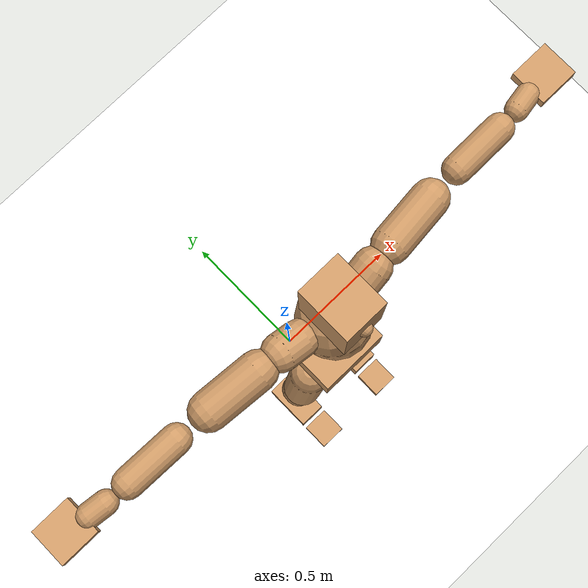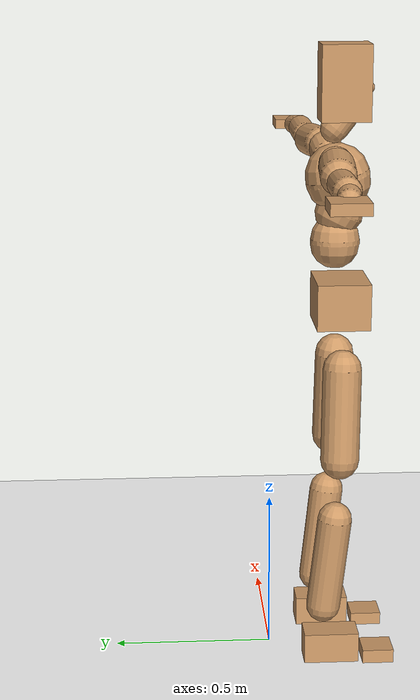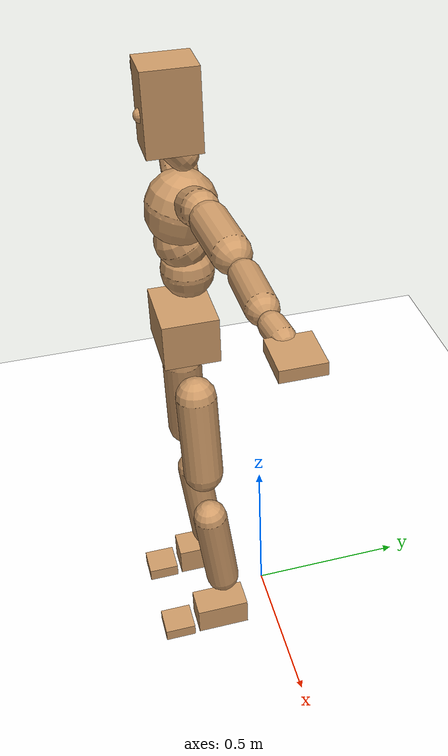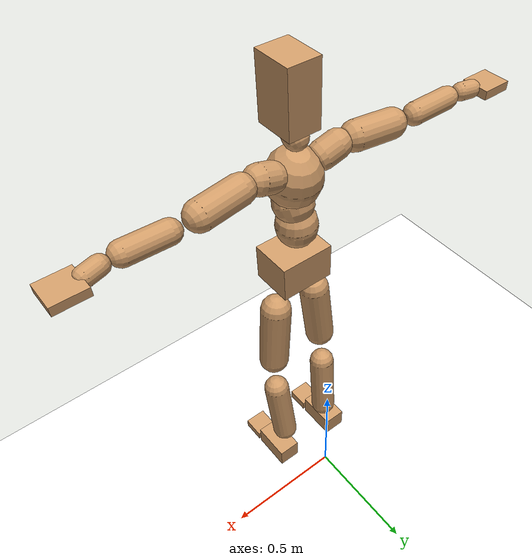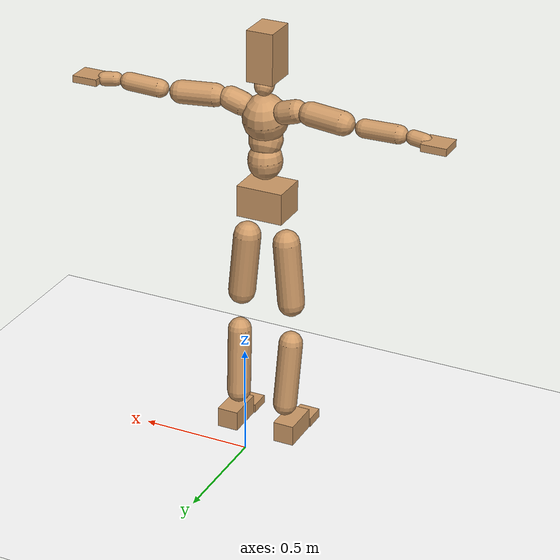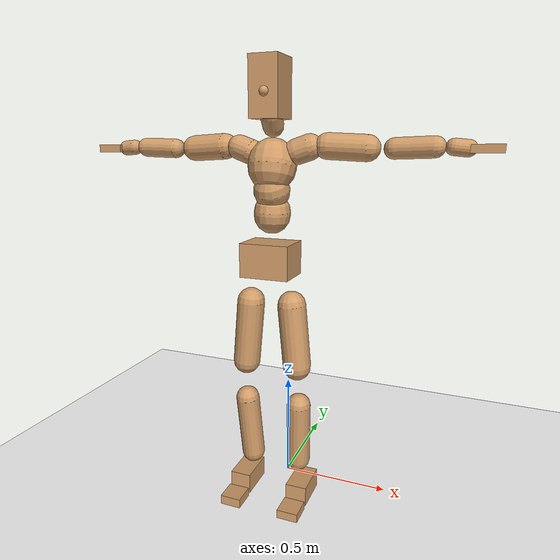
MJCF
<mujoco model="humanoid">
  <option integrator="implicitfast" />

  <visual>
    <global offwidth="1280" offheight="960" />
    <headlight active="1" ambient="0.34 0.34 0.34" diffuse="0.5 0.5 0.5" />
  </visual>

  <default>
    <joint damping="2" stiffness="2" armature="0.01" limited="true" solimplimit="0 .99 .01" />
    <geom condim="1" friction="0.7 0.005 0.0001" solimp=".99 .99 .003" solref="0.015 1" margin="0.001" rgba="0.8 0.6 .4 1" />
    <default class="smplcontact">
      <geom condim="3" friction="1. 0.005 0.0001" solref="0.015 1" solimp="0.98 0.98 0.001" priority="1" />
    </default>
    <default class="stiff_medium">
      <joint stiffness="10" />
    </default>
    <default class="stiff_medium_higher">
      <joint stiffness="50" />
    </default>
    <default class="stiff_high">
      <joint stiffness="100" />
    </default>
  </default>

  <asset>
    <texture type="skybox" builtin="gradient" rgb1="0.99 0.99 0.99" rgb2="0.608 0.828 0.892" width="100" />
    <texture builtin="flat" height="1278" mark="cross" markrgb="1 1 1" name="texgeom" random="0.01" rgb1="0.8 0.6 0.4" rgb2="0.8 0.6 0.4" type="cube" width="127" />
    <texture name="texplane" type="2d" builtin="checker" markrgb="1 1 1" rgb1="0.756 0.772 0.76" rgb2="0.6 0.6 0.6" width="100" height="100" />
    <material name="MatPlane" reflectance="0.5" texture="texplane" texrepeat="1 1" texuniform="true" />
    <material name="geom" texture="texgeom" texuniform="true" />
  </asset>

  <worldbody>
    <light name="tracking_light" pos="0 0 7" dir="0 0 -1" directional="true" cutoff="100" exponent="1" diffuse="1 1 1" specular="0.1 0.1 0.1" mode="trackcom" />
    <camera name="back" pos="0 3 2.4" xyaxes="-1 0 0 0 -1 2" mode="trackcom" />
    <camera name="side" pos="-3 0 2.4" xyaxes="0 -1 0 1 0 2" mode="trackcom" />
    <camera name="front_side" pos="-2.8 -2.8 0.8" xyaxes="0.5 -0.5 0 0.1 0.1 1" mode="trackcom" />
    <geom condim="3" name="floor" pos="0 0 0" rgba="1 1 1 1" size="100 100 .2" type="plane" material="MatPlane" />
    <body name="Pelvis" pos="-0.0018 -0.2233 1.16548" euler="90 0 0">
      <site name="Pelvis" size="0.01" />
      <freejoint name="Pelvis" />
      <geom type="box" pos="-0.0000 -0.0121 -0.0055" size="0.1069 0.0722 0.083" quat="1.0000 0.0000 0.0000 0.0000" density="3165.830099" name="Pelvis" />
      <body name="L_Hip" pos="0.086875 -0.11425 -0.0085">
        <joint name="L_Hip_x" type="hinge" pos="0 0 0" axis="1 0 0" stiffness="14.583448295454549" range="-160.0 22.92" class="stiff_medium" damping="24.101608814047232" armature="0.017703099984975997"/>
        <joint name="L_Hip_y" type="hinge" pos="0 0 0" axis="0 1 0" stiffness="14.530955454545456" range="-70.0 70.0" class="stiff_medium" damping="14.26385429936282" armature="0.014001662871370736"/>
        <joint name="L_Hip_z" type="hinge" pos="0 0 0" axis="0 0 1" stiffness="14.542146590909091" range="-28.65 90.0" class="stiff_medium" damping="16.047407278815232" armature="0.01770847782081624"/>
        <geom type="capsule" density="2040.816327" fromto="0.008625 -0.09375 -0.001125 0.03425 -0.37525 -0.0045" size="0.0615" name="L_Hip" />
        <body name="L_Knee" pos="0.042875 -0.469 -0.005625">
          <joint name="L_Knee_x" type="hinge" pos="0 0 0" axis="1 0 0" range="-5.16 171.89" damping="12.41817411248709" armature="0.016955687393418722" stiffness="2.842170386363636"/>
          <joint name="L_Knee_y" type="hinge" pos="0 0 0" axis="0 1 0" range="-4.58 6.88" damping="11.145187494004064" armature="0.013404538190087155" stiffness="2.8958290681818184"/>
          <joint name="L_Knee_z" type="hinge" pos="0 0 0" axis="0 0 1" range="-6.88 4.58" damping="12.415206275967714" armature="0.016980355499687936" stiffness="2.8366850681818185"/>
          <geom type="capsule" density="1234.567901" fromto="-0.003375 -0.0995 -0.010875 -0.013625 -0.398 -0.04375" size="0.0541" name="L_Knee" />
          <body name="L_Ankle" pos="-0.017 -0.4975 -0.054625">
            <joint name="L_Ankle_x" type="hinge" pos="0 0 0" axis="1 0 0" range="-45.84 45.84" class="stiff_medium" damping="7.851672460898023" armature="0.013699724540716537" stiffness="12.5"/>
            <joint name="L_Ankle_y" type="hinge" pos="0 0 0" axis="0 1 0" range="-74.48 22.92" class="stiff_medium" damping="3.90606547180543" armature="0.01356208664002718" stiffness="12.5"/>
            <joint name="L_Ankle_z" type="hinge" pos="0 0 0" axis="0 0 1" range="-4.58 4.58" class="stiff_medium" damping="7.548153538649478" armature="0.012661027076228142" stiffness="12.5"/>
            <geom type="box" pos="0.029125 -0.029875 0.03025" size="0.0483 0.0464 0.085" quat="1.0000 0.0000 0.0000 0.0000" density="449.071558" name="L_Ankle" class="smplcontact" />
            <body name="L_Toe" pos="0.033 -0.06975 0.149125">
              <joint name="L_Toe_x" type="hinge" pos="0 0 0" axis="1 0 0" range="-91.67 22.92" armature="0.012138557001780051" damping="2.4635905708721215" stiffness="2.5"/>
              <joint name="L_Toe_y" type="hinge" pos="0 0 0" axis="0 1 0" range="-4.58 4.58" armature="0.011506786054687992" damping="2.398623152423906" stiffness="2.5"/>
              <joint name="L_Toe_z" type="hinge" pos="0 0 0" axis="0 0 1" range="-4.58 4.58" armature="0.010229379204578146" damping="2.2615679521714736" stiffness="2.5"/>
              <geom type="box" pos="-0.00375 0.006875 0.031" size="0.0478 0.02 0.0496" quat="1.0000 0.0000 0.0000 0.0000" density="423.206892" name="L_Toe" class="smplcontact" />
            </body>
          </body>
        </body>
      </body>
      <body name="R_Hip" pos="-0.084625 -0.113125 -0.005375">
        <joint name="R_Hip_x" type="hinge" pos="0 0 0" axis="1 0 0" stiffness="14.583448295454549" range="-160.0 22.92" class="stiff_medium" damping="24.101608814047232" armature="0.017703099984975997"/>
        <joint name="R_Hip_y" type="hinge" pos="0 0 0" axis="0 1 0" stiffness="14.530955454545456" range="-70.0 70.0" class="stiff_medium" damping="14.26385429936282" armature="0.014001662871370736"/>
        <joint name="R_Hip_z" type="hinge" pos="0 0 0" axis="0 0 1" stiffness="14.542146590909091" range="-90.0 28.65" class="stiff_medium" damping="16.047407278815232" armature="0.01770847782081624"/>
        <geom type="capsule" density="2040.816327" fromto="-0.009625 -0.095625 -0.00225 -0.03825 -0.382625 -0.008875" size="0.0606" name="R_Hip" />
        <body name="R_Knee" pos="-0.047875 -0.47825 -0.011125">
          <joint name="R_Knee_x" type="hinge" pos="0 0 0" axis="1 0 0" range="-5.16 171.89" damping="12.41817411248709" armature="0.016955687393418722" stiffness="2.842170386363636"/>
          <joint name="R_Knee_y" type="hinge" pos="0 0 0" axis="0 1 0" range="-6.88 4.58" damping="11.145187494004064" armature="0.013404538190087155" stiffness="2.8958290681818184"/>
          <joint name="R_Knee_z" type="hinge" pos="0 0 0" axis="0 0 1" range="-4.58 6.88" damping="12.415206275967714" armature="0.016980355499687936" stiffness="2.8366850681818185"/>
          <geom type="capsule" density="1234.567901" fromto="0.004 -0.099625 -0.010625 0.01575 -0.398375 -0.04225" size="0.0541" name="R_Knee" />
          <body name="R_Ankle" pos="0.01975 -0.498 -0.052875">
            <joint name="R_Ankle_x" type="hinge" pos="0 0 0" axis="1 0 0" range="-45.84 45.84" class="stiff_medium" damping="7.851672460898023" armature="0.013699724540716537" stiffness="12.5"/>
            <joint name="R_Ankle_y" type="hinge" pos="0 0 0" axis="0 1 0" range="-22.92 74.48" class="stiff_medium" damping="3.90606547180543" armature="0.01356208664002718" stiffness="12.5"/>
            <joint name="R_Ankle_z" type="hinge" pos="0 0 0" axis="0 0 1" range="-4.58 4.58" class="stiff_medium" damping="7.548153538649478" armature="0.012661027076228142" stiffness="12.5"/>
            <geom type="box" pos="-0.0265 -0.02175 0.032" size="0.0483 0.0478 0.0865" quat="1.0000 0.0000 0.0000 0.0000" density="434.700981" name="R_Ankle" class="smplcontact" />
            <body name="R_Toe" pos="-0.03175 -0.060125 0.154125">
              <joint name="R_Toe_x" type="hinge" pos="0 0 0" axis="1 0 0" range="-91.67 22.92" armature="0.012138557001780051" damping="2.4635905708721215" stiffness="2.5"/>
              <joint name="R_Toe_y" type="hinge" pos="0 0 0" axis="0 1 0" range="-4.58 4.58" armature="0.011506786054687992" damping="2.398623152423906" stiffness="2.5"/>
              <joint name="R_Toe_z" type="hinge" pos="0 0 0" axis="0 0 1" range="-4.58 4.58" armature="0.010229379204578146" damping="2.2615679521714736" stiffness="2.5"/>
              <geom type="box" pos="0.00525 0.005625 0.028375" size="0.0479 0.0216 0.0493" quat="1.0000 0.0000 0.0000 0.0000" density="407.384095" name="R_Toe" class="smplcontact" />
            </body>
          </body>
        </body>
      </body>
      <body name="Torso" pos="-0.0025 0.109 -0.0267">
        <joint name="Torso_x" type="hinge" pos="0 0 0" axis="1 0 0" range="-25.78 57.3" class="stiff_medium" damping="15.0" armature="0.010000000000000002" stiffness="10.0"/>
        <joint name="Torso_y" type="hinge" pos="0 0 0" axis="0 1 0" range="-57.3 57.3" class="stiff_high" damping="20.0" armature="0.010000000000000002" stiffness="100.0"/>
        <joint name="Torso_z" type="hinge" pos="0 0 0" axis="0 0 1" range="-34.38 34.38" class="stiff_high" damping="19.999999999999996" armature="0.009999999999999997" stiffness="100.0"/>
        <geom type="capsule" density="2040.816327" fromto="0.0025 0.0608 0.0005 0.003 0.0743 0.0006" size="0.0769" name="Torso" />
        <body name="Spine" pos="0.0055 0.1352 0.0011">
          <joint name="Spine_x" type="hinge" pos="0 0 0" axis="1 0 0" stiffness="10.0" range="-25.78 57.3" class="stiff_medium" damping="15.00000000000001" armature="0.010000000000000014"/>
          <joint name="Spine_y" type="hinge" pos="0 0 0" axis="0 1 0" stiffness="10.0" range="-57.3 57.3" class="stiff_high" damping="8.0" armature="0.01"/>
          <joint name="Spine_z" type="hinge" pos="0 0 0" axis="0 0 1" stiffness="20.0" range="-34.38 34.38" class="stiff_high" damping="12.0" armature="0.010000000000000002"/>
          <geom type="capsule" density="2040.816327" fromto="0.0007 0.0238 0.0114 0.0008 0.0291 0.014" size="0.0755" name="Spine" />
          <body name="Chest" pos="0.0015 0.0529 0.0254">
            <joint name="Chest_x" type="hinge" pos="0 0 0" axis="1 0 0" stiffness="10.0" range="-25.78 57.3" class="stiff_medium" damping="15.000000000000004" armature="0.010000000000000005"/>
            <joint name="Chest_y" type="hinge" pos="0 0 0" axis="0 1 0" stiffness="10.0" range="-57.3 57.3" class="stiff_high" damping="8.0" armature="0.010000000000000002"/>
            <joint name="Chest_z" type="hinge" pos="0 0 0" axis="0 0 1" stiffness="20.0" range="-34.38 34.38" class="stiff_high" damping="12.000000000000004" armature="0.010000000000000005"/>
            <geom type="capsule" density="2040.816327" fromto="-0.0009 0.0682 -0.0173 -0.001 0.0833 -0.0212" size="0.1002" name="Chest" />
            <body name="Neck" pos="-0.0028 0.2139 -0.0429">
              <joint name="Neck_x" type="hinge" pos="0 0 0" axis="1 0 0" range="-28.65 57.3" class="stiff_medium_higher" damping="10.000000000000004" armature="0.010000000000000009" stiffness="50.0"/>
              <joint name="Neck_y" type="hinge" pos="0 0 0" axis="0 1 0" range="-40.11 40.11" class="stiff_medium_higher" damping="10.0" armature="0.01" stiffness="50.0"/>
              <joint name="Neck_z" type="hinge" pos="0 0 0" axis="0 0 1" range="-40.11 40.11" class="stiff_medium_higher" damping="10.000000000000004" armature="0.010000000000000009" stiffness="50.0"/>
              <geom type="capsule" density="1000" fromto="0.001 0.013 0.0103 0.0041 0.052 0.0411" size="0.0436" name="Neck" />
              <body name="Head" pos="0.0052 0.065 0.0513">
                <joint name="Head_x" type="hinge" pos="0 0 0" axis="1 0 0" range="-28.65 57.3" class="stiff_medium_higher" damping="2.000000000000006" armature="0.010000000000000064" stiffness="50.0"/>
                <joint name="Head_y" type="hinge" pos="0 0 0" axis="0 1 0" range="-40.11 40.11" class="stiff_medium_higher" damping="1.9999999999999998" armature="0.009999999999999998" stiffness="50.0"/>
                <joint name="Head_z" type="hinge" pos="0 0 0" axis="0 0 1" range="-40.11 40.11" class="stiff_medium_higher" damping="2.0000000000000053" armature="0.010000000000000054" stiffness="50.0"/>
                <geom type="box" pos="-0.0042 0.0876 -0.0116" size="0.0606 0.1154 0.076" quat="1.0000 0.0000 0.0000 0.0000" density="1018.069894" name="Head" />
                <geom type="capsule" name="nose" size="0.02 0.01" pos="0 0.07 0.05" quat="1 0 0 0" mass="0" contype="0" conaffinity="0" />
              </body>
            </body>
            <body name="L_Thorax" pos="0.0788 0.1217 -0.0341">
              <joint name="L_Thorax_x" type="hinge" pos="0 0 0" axis="1 0 0" range="-10.89 4.58" class="stiff_medium_higher" damping="20.000000000000018" armature="0.010000000000000018" stiffness="50.0"/>
              <joint name="L_Thorax_y" type="hinge" pos="0 0 0" axis="0 1 0" range="-28.65 17.19" class="stiff_medium_higher" damping="20.0" armature="0.010000000000000002" stiffness="50.0"/>
              <joint name="L_Thorax_z" type="hinge" pos="0 0 0" axis="0 0 1" range="-31.51 40.11" class="stiff_medium_higher" damping="20.0" armature="0.01" stiffness="50.0"/>
              <geom type="capsule" density="1000" fromto="0.0182 0.0061 -0.0018 0.0728 0.0244 -0.0071" size="0.0521" name="L_Thorax" />
              <body name="L_Shoulder" pos="0.091 0.0305 -0.0089">
                <joint name="L_Shoulder_x" type="hinge" pos="0 0 0" axis="1 0 0" range="-97.4 97.4" class="stiff_medium" damping="6.000000000000053" armature="0.01000000000000018" stiffness="10.0"/>
                <joint name="L_Shoulder_y" type="hinge" pos="0 0 0" axis="0 1 0" range="-108.86 80.21" class="stiff_medium" damping="6.0" armature="0.01" stiffness="10.0"/>
                <joint name="L_Shoulder_z" type="hinge" pos="0 0 0" axis="0 0 1" range="-97.4 85.94" class="stiff_medium" damping="6.000000000000002" armature="0.010000000000000007" stiffness="10.0"/>
                <geom type="capsule" density="1000" fromto="0.0519 -0.0026 -0.0055 0.2077 -0.0102 -0.022" size="0.0517" name="L_Shoulder" />
                <body name="L_Elbow" pos="0.2596 -0.0128 -0.0275">
                  <joint name="L_Elbow_x" type="hinge" pos="0 0 0" axis="1 0 0" range="-17.19 4.58" damping="5.000000000000017" armature="0.010000000000000066" stiffness="2.0"/>
                  <joint name="L_Elbow_y" type="hinge" pos="0 0 0" axis="0 1 0" range="-180.0 17.19" damping="5.000000000000002" armature="0.01000000000000001" stiffness="2.0"/>
                  <joint name="L_Elbow_z" type="hinge" pos="0 0 0" axis="0 0 1" range="-100.84 4.58" damping="5.0000000000000036" armature="0.010000000000000014" stiffness="2.0"/>
                  <geom type="capsule" density="1000" fromto="0.0498 0.0018 -0.0002 0.1994 0.0072 -0.0009" size="0.0405" name="L_Elbow" />
                  <body name="L_Wrist" pos="0.2492 0.009 -0.0012">
                    <joint name="L_Wrist_x" type="hinge" pos="0 0 0" axis="1 0 0" range="-180.0 22.92" armature="0.00999999999999932" damping="1.999999999999932" stiffness="2.0"/>
                    <joint name="L_Wrist_y" type="hinge" pos="0 0 0" axis="0 1 0" range="-17.19 17.19" armature="0.009999999999999967" damping="1.9999999999999967" stiffness="2.0"/>
                    <joint name="L_Wrist_z" type="hinge" pos="0 0 0" axis="0 0 1" range="-22.92 22.92" armature="0.00999999999999992" damping="1.999999999999992" stiffness="2.0"/>
                    <geom type="capsule" density="1000" fromto="0.0168 -0.0016 -0.003 0.0672 -0.0065 -0.012" size="0.0318" name="L_Wrist" class="smplcontact" />
                    <body name="L_Hand" pos="0.084 -0.0082 -0.0149">
                      <joint name="L_Hand_x" type="hinge" pos="0 0 0" axis="1 0 0" range="-17.19 17.19" armature="0.009999999999999728" damping="1.9999999999999727" stiffness="2.0"/>
                      <joint name="L_Hand_y" type="hinge" pos="0 0 0" axis="0 1 0" range="-51.57 51.57" armature="0.00999999999999994" damping="1.9999999999999938" stiffness="2.0"/>
                      <joint name="L_Hand_z" type="hinge" pos="0 0 0" axis="0 0 1" range="-91.67 91.67" armature="0.010000000000000005" damping="2.0000000000000004" stiffness="2.0"/>
                      <geom type="box" pos="0.0493 0.001 -0.0058" size="0.0585 0.0158 0.0538" quat="1.0000 0.0000 0.0000 0.0000" density="400.552564" name="L_Hand" class="smplcontact" />
                    </body>
                  </body>
                </body>
              </body>
            </body>
            <body name="R_Thorax" pos="-0.0818 0.1188 -0.0386">
              <joint name="R_Thorax_x" type="hinge" pos="0 0 0" axis="1 0 0" range="-10.89 4.58" class="stiff_medium_higher" damping="20.000000000000018" armature="0.010000000000000018" stiffness="50.0"/>
              <joint name="R_Thorax_y" type="hinge" pos="0 0 0" axis="0 1 0" range="-17.19 28.65" class="stiff_medium_higher" damping="20.0" armature="0.010000000000000002" stiffness="50.0"/>
              <joint name="R_Thorax_z" type="hinge" pos="0 0 0" axis="0 0 1" range="-40.11 31.51" class="stiff_medium_higher" damping="20.0" armature="0.01" stiffness="50.0"/>
              <geom type="capsule" density="1000" fromto="-0.0192 0.0065 -0.0018 -0.0768 0.026 -0.0073" size="0.0511" name="R_Thorax" />
              <body name="R_Shoulder" pos="-0.096 0.0326 -0.0091">
                <joint name="R_Shoulder_x" type="hinge" pos="0 0 0" axis="1 0 0" range="-97.4 97.4" class="stiff_medium" damping="6.000000000000053" armature="0.01000000000000018" stiffness="10.0"/>
                <joint name="R_Shoulder_y" type="hinge" pos="0 0 0" axis="0 1 0" range="-80.21 108.86" class="stiff_medium" damping="6.0" armature="0.01" stiffness="10.0"/>
                <joint name="R_Shoulder_z" type="hinge" pos="0 0 0" axis="0 0 1" range="-85.94 97.4" class="stiff_medium" damping="6.000000000000002" armature="0.010000000000000007" stiffness="10.0"/>
                <geom type="capsule" density="1000" fromto="-0.0507 -0.0027 -0.0043 -0.203 -0.0107 -0.0171" size="0.0531" name="R_Shoulder" />
                <body name="R_Elbow" pos="-0.2537 -0.0133 -0.0214">
                  <joint name="R_Elbow_x" type="hinge" pos="0 0 0" axis="1 0 0" range="-17.19 4.58" damping="5.000000000000017" armature="0.010000000000000066" stiffness="2.0"/>
                  <joint name="R_Elbow_y" type="hinge" pos="0 0 0" axis="0 1 0" range="-17.19 180.0" damping="5.000000000000002" armature="0.01000000000000001" stiffness="2.0"/>
                  <joint name="R_Elbow_z" type="hinge" pos="0 0 0" axis="0 0 1" range="-4.58 100.84" damping="5.0000000000000036" armature="0.010000000000000014" stiffness="2.0"/>
                  <geom type="capsule" density="1000" fromto="-0.0511 0.0016 -0.0011 -0.2042 0.0062 -0.0044" size="0.0408" name="R_Elbow" />
                  <body name="R_Wrist" pos="-0.2553 0.0078 -0.0056">
                    <joint name="R_Wrist_x" type="hinge" pos="0 0 0" axis="1 0 0" range="-180.0 22.92" armature="0.00999999999999932" damping="1.999999999999932" stiffness="2.0"/>
                    <joint name="R_Wrist_y" type="hinge" pos="0 0 0" axis="0 1 0" range="-17.19 17.19" armature="0.009999999999999967" damping="1.9999999999999967" stiffness="2.0"/>
                    <joint name="R_Wrist_z" type="hinge" pos="0 0 0" axis="0 0 1" range="-22.92 22.92" armature="0.00999999999999992" damping="1.999999999999992" stiffness="2.0"/>
                    <geom type="capsule" density="1000" fromto="-0.0169 -0.0012 -0.0021 -0.0677 -0.0049 -0.0083" size="0.0326" name="R_Wrist" class="smplcontact" />
                    <body name="R_Hand" pos="-0.0846 -0.0061 -0.0103">
                      <joint name="R_Hand_x" type="hinge" pos="0 0 0" axis="1 0 0" range="-17.19 17.19" armature="0.009999999999999728" damping="1.9999999999999727" stiffness="2.0"/>
                      <joint name="R_Hand_y" type="hinge" pos="0 0 0" axis="0 1 0" range="-51.57 51.57" armature="0.00999999999999994" damping="1.9999999999999938" stiffness="2.0"/>
                      <joint name="R_Hand_z" type="hinge" pos="0 0 0" axis="0 0 1" range="-91.67 91.67" armature="0.010000000000000005" damping="2.0000000000000004" stiffness="2.0"/>
                      <geom type="box" pos="-0.0462 -0.0009 -0.0079" size="0.0569 0.0164 0.0546" quat="1.0000 0.0000 0.0000 0.0000" density="403.679611" name="R_Hand" class="smplcontact" />
                    </body>
                  </body>
                </body>
              </body>
            </body>
          </body>
        </body>
      </body>
    </body>
  </worldbody>
  <actuator>
    <general name="L_Hip_x" joint="L_Hip_x" biastype="affine" gainprm="419.02631334929436" biasprm="-314.01775111481123 -262.5020693181819 -3.2135478418729644" ctrllimited="true" ctrlrange="-1 1" forcerange="-525.0041386363638 525.0041386363638" />
    <general name="L_Hip_y" joint="L_Hip_y" biastype="affine" gainprm="319.55240033948377" biasprm="0.0 -261.5571981818182 -2.852770859872564" ctrllimited="true" ctrlrange="-1 1" forcerange="-523.1143963636364 523.1143963636364" />
    <general name="L_Hip_z" joint="L_Hip_z" biastype="affine" gainprm="271.0292340739789" biasprm="140.1402740028538 -261.7586386363636 -3.2094814557630467" ctrllimited="true" ctrlrange="-1 1" forcerange="-523.5172772727273 523.5172772727273" />
    <general name="L_Knee_x" joint="L_Knee_x" biastype="affine" gainprm="395.21727783780864" biasprm="372.1806084941984 -255.79533477272724 -3.1045435281217726" ctrllimited="true" ctrlrange="-1 1" forcerange="-511.5906695454545 511.5906695454545" />
    <general name="L_Knee_y" joint="L_Knee_y" biastype="affine" gainprm="26.06438141085734" biasprm="5.2310713128247714 -260.62461613636367 -2.786296873501016" ctrllimited="true" ctrlrange="-1 1" forcerange="-521.2492322727273 521.2492322727273" />
    <general name="L_Knee_z" joint="L_Knee_z" biastype="affine" gainprm="25.532046201192625" biasprm="-5.124232658180021 -255.30165613636368 -3.1038015689919285" ctrllimited="true" ctrlrange="-1 1" forcerange="-510.60331227272735 510.60331227272735" />
    <general name="L_Ankle_x" joint="L_Ankle_x" biastype="affine" gainprm="90.00662952534759" biasprm="0.0 -112.5 -2.6172241536326744" ctrllimited="true" ctrlrange="-1 1" forcerange="-225.0 225.0" />
    <general name="L_Ankle_y" joint="L_Ankle_y" biastype="affine" gainprm="95.62222639363935" biasprm="-50.61891163096555 -112.5 -2.6040436478702866" ctrllimited="true" ctrlrange="-1 1" forcerange="-225.0 225.0" />
    <general name="L_Ankle_z" joint="L_Ankle_z" biastype="affine" gainprm="8.992808970900782" biasprm="0.0 -112.5 -2.516051179549826" ctrllimited="true" ctrlrange="-1 1" forcerange="-225.0 225.0" />
    <general name="L_Toe_x" joint="L_Toe_x" biastype="affine" gainprm="89.99877554371359" biasprm="-53.996123733574564 -90.0 -0.9854362283488487" ctrllimited="true" ctrlrange="-1 1" forcerange="-180.0 180.0" />
    <general name="L_Toe_y" joint="L_Toe_y" biastype="affine" gainprm="7.194247176720626" biasprm="0.0 -90.0 -0.9594492609695625" ctrllimited="true" ctrlrange="-1 1" forcerange="-180.0 180.0" />
    <general name="L_Toe_z" joint="L_Toe_z" biastype="affine" gainprm="7.194247176720626" biasprm="0.0 -90.0 -0.9046271808685895" ctrllimited="true" ctrlrange="-1 1" forcerange="-180.0 180.0" />
    <general name="R_Hip_x" joint="R_Hip_x" biastype="affine" gainprm="419.02631334929436" biasprm="-314.01775111481123 -262.5020693181819 -3.2135478418729644" ctrllimited="true" ctrlrange="-1 1" forcerange="-525.0041386363638 525.0041386363638" />
    <general name="R_Hip_y" joint="R_Hip_y" biastype="affine" gainprm="319.55240033948377" biasprm="0.0 -261.5571981818182 -2.852770859872564" ctrllimited="true" ctrlrange="-1 1" forcerange="-523.1143963636364 523.1143963636364" />
    <general name="R_Hip_z" joint="R_Hip_z" biastype="affine" gainprm="271.0292340739789" biasprm="-140.1402740028538 -261.7586386363636 -3.2094814557630467" ctrllimited="true" ctrlrange="-1 1" forcerange="-523.5172772727273 523.5172772727273" />
    <general name="R_Knee_x" joint="R_Knee_x" biastype="affine" gainprm="395.21727783780864" biasprm="372.1806084941984 -255.79533477272724 -3.1045435281217726" ctrllimited="true" ctrlrange="-1 1" forcerange="-511.5906695454545 511.5906695454545" />
    <general name="R_Knee_y" joint="R_Knee_y" biastype="affine" gainprm="26.06438141085734" biasprm="-5.2310713128247714 -260.62461613636367 -2.786296873501016" ctrllimited="true" ctrlrange="-1 1" forcerange="-521.2492322727273 521.2492322727273" />
    <general name="R_Knee_z" joint="R_Knee_z" biastype="affine" gainprm="25.532046201192625" biasprm="5.124232658180021 -255.30165613636368 -3.1038015689919285" ctrllimited="true" ctrlrange="-1 1" forcerange="-510.60331227272735 510.60331227272735" />
    <general name="R_Ankle_x" joint="R_Ankle_x" biastype="affine" gainprm="90.00662952534759" biasprm="0.0 -112.5 -2.6172241536326744" ctrllimited="true" ctrlrange="-1 1" forcerange="-225.0 225.0" />
    <general name="R_Ankle_y" joint="R_Ankle_y" biastype="affine" gainprm="95.62222639363935" biasprm="50.61891163096555 -112.5 -2.6040436478702866" ctrllimited="true" ctrlrange="-1 1" forcerange="-225.0 225.0" />
    <general name="R_Ankle_z" joint="R_Ankle_z" biastype="affine" gainprm="8.992808970900782" biasprm="0.0 -112.5 -2.516051179549826" ctrllimited="true" ctrlrange="-1 1" forcerange="-225.0 225.0" />
    <general name="R_Toe_x" joint="R_Toe_x" biastype="affine" gainprm="89.99877554371359" biasprm="-53.996123733574564 -90.0 -0.9854362283488487" ctrllimited="true" ctrlrange="-1 1" forcerange="-180.0 180.0" />
    <general name="R_Toe_y" joint="R_Toe_y" biastype="affine" gainprm="7.194247176720626" biasprm="0.0 -90.0 -0.9594492609695625" ctrllimited="true" ctrlrange="-1 1" forcerange="-180.0 180.0" />
    <general name="R_Toe_z" joint="R_Toe_z" biastype="affine" gainprm="7.194247176720626" biasprm="0.0 -90.0 -0.9046271808685895" ctrllimited="true" ctrlrange="-1 1" forcerange="-180.0 180.0" />
    <general name="Torso_x" joint="Torso_x" biastype="affine" gainprm="174.00234510682668" biasprm="66.0153336274335 -240.0 -4.0" ctrllimited="true" ctrlrange="-1 1" forcerange="-360.0 360.0" />
    <general name="Torso_y" joint="Torso_y" biastype="affine" gainprm="240.0176787342602" biasprm="0.0 -240.0 -4.0" ctrllimited="true" ctrlrange="-1 1" forcerange="-360.0 360.0" />
    <general name="Torso_z" joint="Torso_z" biastype="affine" gainprm="144.01060724055614" biasprm="0.0 -240.0 -3.999999999999999" ctrllimited="true" ctrlrange="-1 1" forcerange="-360.0 360.0" />
    <general name="Spine_x" joint="Spine_x" biastype="affine" gainprm="174.00234510682668" biasprm="66.0153336274335 -240.0 -4.000000000000003" ctrllimited="true" ctrlrange="-1 1" forcerange="-360.0 360.0" />
    <general name="Spine_y" joint="Spine_y" biastype="affine" gainprm="240.0176787342602" biasprm="0.0 -240.0 -4.0" ctrllimited="true" ctrlrange="-1 1" forcerange="-360.0 360.0" />
    <general name="Spine_z" joint="Spine_z" biastype="affine" gainprm="144.01060724055614" biasprm="0.0 -240.0 -4.0" ctrllimited="true" ctrlrange="-1 1" forcerange="-360.0 360.0" />
    <general name="Chest_x" joint="Chest_x" biastype="affine" gainprm="174.00234510682668" biasprm="66.0153336274335 -240.0 -4.000000000000001" ctrllimited="true" ctrlrange="-1 1" forcerange="-360.0 360.0" />
    <general name="Chest_y" joint="Chest_y" biastype="affine" gainprm="240.0176787342602" biasprm="0.0 -240.0 -4.0" ctrllimited="true" ctrlrange="-1 1" forcerange="-360.0 360.0" />
    <general name="Chest_z" joint="Chest_z" biastype="affine" gainprm="144.01060724055614" biasprm="0.0 -240.0 -4.000000000000001" ctrllimited="true" ctrlrange="-1 1" forcerange="-360.0 360.0" />
    <general name="Neck_x" joint="Neck_x" biastype="affine" gainprm="27.00198885760427" biasprm="9.000662952534757 -36.0 -0.8000000000000004" ctrllimited="true" ctrlrange="-1 1" forcerange="-72.0 72.0" />
    <general name="Neck_y" joint="Neck_y" biastype="affine" gainprm="25.20185626709732" biasprm="0.0 -36.0 -0.8" ctrllimited="true" ctrlrange="-1 1" forcerange="-72.0 72.0" />
    <general name="Neck_z" joint="Neck_z" biastype="affine" gainprm="25.20185626709732" biasprm="0.0 -36.0 -0.8000000000000004" ctrllimited="true" ctrlrange="-1 1" forcerange="-72.0 72.0" />
    <general name="Head_x" joint="Head_x" biastype="affine" gainprm="18.001325905069514" biasprm="6.000441968356505 -24.0 -0.8000000000000025" ctrllimited="true" ctrlrange="-1 1" forcerange="-48.0 48.0" />
    <general name="Head_y" joint="Head_y" biastype="affine" gainprm="16.801237511398213" biasprm="0.0 -24.0 -0.7999999999999999" ctrllimited="true" ctrlrange="-1 1" forcerange="-48.0 48.0" />
    <general name="Head_z" joint="Head_z" biastype="affine" gainprm="16.801237511398213" biasprm="0.0 -24.0 -0.8000000000000022" ctrllimited="true" ctrlrange="-1 1" forcerange="-48.0 48.0" />
    <general name="L_Thorax_x" joint="L_Thorax_x" biastype="affine" gainprm="16.200146117011364" biasprm="-6.6078165480505335 -120.0 -1.6000000000000014" ctrllimited="true" ctrlrange="-1 1" forcerange="-240.0 240.0" />
    <general name="L_Thorax_y" joint="L_Thorax_y" biastype="affine" gainprm="48.00353574685204" biasprm="-12.00088393671301 -120.0 -1.6" ctrllimited="true" ctrlrange="-1 1" forcerange="-240.0 240.0" />
    <general name="L_Thorax_z" joint="L_Thorax_z" biastype="affine" gainprm="75.00028861670033" biasprm="9.00589894029074 -120.0 -1.6" ctrllimited="true" ctrlrange="-1 1" forcerange="-240.0 240.0" />
    <general name="L_Shoulder_x" joint="L_Shoulder_x" biastype="affine" gainprm="81.5976331892389" biasprm="0.0 -48.0 -1.6000000000000143" ctrllimited="true" ctrlrange="-1 1" forcerange="-96.0 96.0" />
    <general name="L_Shoulder_y" joint="L_Shoulder_y" biastype="affine" gainprm="79.19745640189629" biasprm="-12.00088393671301 -48.0 -1.6" ctrllimited="true" ctrlrange="-1 1" forcerange="-96.0 96.0" />
    <general name="L_Shoulder_z" joint="L_Shoulder_z" biastype="affine" gainprm="76.79727961455369" biasprm="-4.800353574685214 -48.0 -1.6000000000000005" ctrllimited="true" ctrlrange="-1 1" forcerange="-96.0 96.0" />
    <general name="L_Elbow_x" joint="L_Elbow_x" biastype="affine" gainprm="13.67849441372996" biasprm="-7.923096672353461 -72.0 -0.8000000000000027" ctrllimited="true" ctrlrange="-1 1" forcerange="-144.0 144.0" />
    <general name="L_Elbow_y" joint="L_Elbow_y" biastype="affine" gainprm="123.89813107227425" biasprm="-102.29653998619085 -72.0 -0.8000000000000004" ctrllimited="true" ctrlrange="-1 1" forcerange="-144.0 144.0" />
    <general name="L_Elbow_z" joint="L_Elbow_z" biastype="affine" gainprm="66.23733950828719" biasprm="-60.4819417669107 -72.0 -0.8000000000000006" ctrllimited="true" ctrlrange="-1 1" forcerange="-144.0 144.0" />
    <general name="L_Wrist_x" joint="L_Wrist_x" biastype="affine" gainprm="21.24973270888136" biasprm="-16.449379134196157 -12.0 -0.7999999999999728" ctrllimited="true" ctrlrange="-1 1" forcerange="-24.0 24.0" />
    <general name="L_Wrist_y" joint="L_Wrist_y" biastype="affine" gainprm="3.6002651810139037" biasprm="0.0 -12.0 -0.7999999999999987" ctrllimited="true" ctrlrange="-1 1" forcerange="-24.0 24.0" />
    <general name="L_Wrist_z" joint="L_Wrist_z" biastype="affine" gainprm="4.800353574685205" biasprm="0.0 -12.0 -0.7999999999999968" ctrllimited="true" ctrlrange="-1 1" forcerange="-24.0 24.0" />
    <general name="L_Hand_x" joint="L_Hand_x" biastype="affine" gainprm="3.6002651810139037" biasprm="0.0 -12.0 -0.7999999999999892" ctrllimited="true" ctrlrange="-1 1" forcerange="-24.0 24.0" />
    <general name="L_Hand_y" joint="L_Hand_y" biastype="affine" gainprm="10.800795543041708" biasprm="0.0 -12.0 -0.7999999999999976" ctrllimited="true" ctrlrange="-1 1" forcerange="-24.0 24.0" />
    <general name="L_Hand_z" joint="L_Hand_z" biastype="affine" gainprm="19.199319903638422" biasprm="0.0 -12.0 -0.8000000000000003" ctrllimited="true" ctrlrange="-1 1" forcerange="-24.0 24.0" />
    <general name="R_Thorax_x" joint="R_Thorax_x" biastype="affine" gainprm="16.200146117011364" biasprm="-6.6078165480505335 -120.0 -1.6000000000000014" ctrllimited="true" ctrlrange="-1 1" forcerange="-240.0 240.0" />
    <general name="R_Thorax_y" joint="R_Thorax_y" biastype="affine" gainprm="48.00353574685204" biasprm="12.000883936713002 -120.0 -1.6" ctrllimited="true" ctrlrange="-1 1" forcerange="-240.0 240.0" />
    <general name="R_Thorax_z" joint="R_Thorax_z" biastype="affine" gainprm="75.00028861670033" biasprm="-9.00589894029074 -120.0 -1.6" ctrllimited="true" ctrlrange="-1 1" forcerange="-240.0 240.0" />
    <general name="R_Shoulder_x" joint="R_Shoulder_x" biastype="affine" gainprm="81.5976331892389" biasprm="0.0 -48.0 -1.6000000000000143" ctrllimited="true" ctrlrange="-1 1" forcerange="-96.0 96.0" />
    <general name="R_Shoulder_y" joint="R_Shoulder_y" biastype="affine" gainprm="79.19745640189629" biasprm="12.00088393671301 -48.0 -1.6" ctrllimited="true" ctrlrange="-1 1" forcerange="-96.0 96.0" />
    <general name="R_Shoulder_z" joint="R_Shoulder_z" biastype="affine" gainprm="76.79727961455369" biasprm="4.800353574685204 -48.0 -1.6000000000000005" ctrllimited="true" ctrlrange="-1 1" forcerange="-96.0 96.0" />
    <general name="R_Elbow_x" joint="R_Elbow_x" biastype="affine" gainprm="13.67849441372996" biasprm="-7.923096672353461 -72.0 -0.8000000000000027" ctrllimited="true" ctrlrange="-1 1" forcerange="-144.0 144.0" />
    <general name="R_Elbow_y" joint="R_Elbow_y" biastype="affine" gainprm="123.89813107227425" biasprm="102.29653998619085 -72.0 -0.8000000000000004" ctrllimited="true" ctrlrange="-1 1" forcerange="-144.0 144.0" />
    <general name="R_Elbow_z" joint="R_Elbow_z" biastype="affine" gainprm="66.23733950828719" biasprm="60.481941766910694 -72.0 -0.8000000000000006" ctrllimited="true" ctrlrange="-1 1" forcerange="-144.0 144.0" />
    <general name="R_Wrist_x" joint="R_Wrist_x" biastype="affine" gainprm="21.24973270888136" biasprm="-16.449379134196157 -12.0 -0.7999999999999728" ctrllimited="true" ctrlrange="-1 1" forcerange="-24.0 24.0" />
    <general name="R_Wrist_y" joint="R_Wrist_y" biastype="affine" gainprm="3.6002651810139037" biasprm="0.0 -12.0 -0.7999999999999987" ctrllimited="true" ctrlrange="-1 1" forcerange="-24.0 24.0" />
    <general name="R_Wrist_z" joint="R_Wrist_z" biastype="affine" gainprm="4.800353574685205" biasprm="0.0 -12.0 -0.7999999999999968" ctrllimited="true" ctrlrange="-1 1" forcerange="-24.0 24.0" />
    <general name="R_Hand_x" joint="R_Hand_x" biastype="affine" gainprm="3.6002651810139037" biasprm="0.0 -12.0 -0.7999999999999892" ctrllimited="true" ctrlrange="-1 1" forcerange="-24.0 24.0" />
    <general name="R_Hand_y" joint="R_Hand_y" biastype="affine" gainprm="10.800795543041708" biasprm="0.0 -12.0 -0.7999999999999976" ctrllimited="true" ctrlrange="-1 1" forcerange="-24.0 24.0" />
    <general name="R_Hand_z" joint="R_Hand_z" biastype="affine" gainprm="19.199319903638422" biasprm="0.0 -12.0 -0.8000000000000003" ctrllimited="true" ctrlrange="-1 1" forcerange="-24.0 24.0" />
  </actuator>
  <contact>
    <exclude body1="Torso" body2="Chest" />
    <exclude body1="Head" body2="Chest" />
    <exclude body1="R_Knee" body2="R_Toe" />
    <exclude body1="R_Knee" body2="L_Ankle" />
    <exclude body1="R_Knee" body2="L_Toe" />
    <exclude body1="L_Knee" body2="L_Toe" />
    <exclude body1="L_Knee" body2="R_Ankle" />
    <exclude body1="L_Knee" body2="R_Toe" />
    <exclude body1="L_Shoulder" body2="Chest" />
    <exclude body1="R_Shoulder" body2="Chest" />
  </contact>
  <sensor>
    <framelinvel name="sensor_Pelvis_framelinvel" objtype="xbody" objname="Pelvis" />
    <framelinvel name="sensor_L_Hip_framelinvel" objtype="xbody" objname="L_Hip" />
    <framelinvel name="sensor_L_Knee_framelinvel" objtype="xbody" objname="L_Knee" />
    <framelinvel name="sensor_L_Ankle_framelinvel" objtype="xbody" objname="L_Ankle" />
    <framelinvel name="sensor_L_Toe_framelinvel" objtype="xbody" objname="L_Toe" />
    <framelinvel name="sensor_R_Hip_framelinvel" objtype="xbody" objname="R_Hip" />
    <framelinvel name="sensor_R_Knee_framelinvel" objtype="xbody" objname="R_Knee" />
    <framelinvel name="sensor_R_Ankle_framelinvel" objtype="xbody" objname="R_Ankle" />
    <framelinvel name="sensor_R_Toe_framelinvel" objtype="xbody" objname="R_Toe" />
    <framelinvel name="sensor_Torso_framelinvel" objtype="xbody" objname="Torso" />
    <framelinvel name="sensor_Spine_framelinvel" objtype="xbody" objname="Spine" />
    <framelinvel name="sensor_Chest_framelinvel" objtype="xbody" objname="Chest" />
    <framelinvel name="sensor_Neck_framelinvel" objtype="xbody" objname="Neck" />
    <framelinvel name="sensor_Head_framelinvel" objtype="xbody" objname="Head" />
    <framelinvel name="sensor_L_Thorax_framelinvel" objtype="xbody" objname="L_Thorax" />
    <framelinvel name="sensor_L_Shoulder_framelinvel" objtype="xbody" objname="L_Shoulder" />
    <framelinvel name="sensor_L_Elbow_framelinvel" objtype="xbody" objname="L_Elbow" />
    <framelinvel name="sensor_L_Wrist_framelinvel" objtype="xbody" objname="L_Wrist" />
    <framelinvel name="sensor_L_Hand_framelinvel" objtype="xbody" objname="L_Hand" />
    <framelinvel name="sensor_R_Thorax_framelinvel" objtype="xbody" objname="R_Thorax" />
    <framelinvel name="sensor_R_Shoulder_framelinvel" objtype="xbody" objname="R_Shoulder" />
    <framelinvel name="sensor_R_Elbow_framelinvel" objtype="xbody" objname="R_Elbow" />
    <framelinvel name="sensor_R_Wrist_framelinvel" objtype="xbody" objname="R_Wrist" />
    <framelinvel name="sensor_R_Hand_framelinvel" objtype="xbody" objname="R_Hand" />
    <frameangvel name="sensor_Pelvis_frameangvel" objtype="xbody" objname="Pelvis" />
    <frameangvel name="sensor_L_Hip_frameangvel" objtype="xbody" objname="L_Hip" />
    <frameangvel name="sensor_L_Knee_frameangvel" objtype="xbody" objname="L_Knee" />
    <frameangvel name="sensor_L_Ankle_frameangvel" objtype="xbody" objname="L_Ankle" />
    <frameangvel name="sensor_L_Toe_frameangvel" objtype="xbody" objname="L_Toe" />
    <frameangvel name="sensor_R_Hip_frameangvel" objtype="xbody" objname="R_Hip" />
    <frameangvel name="sensor_R_Knee_frameangvel" objtype="xbody" objname="R_Knee" />
    <frameangvel name="sensor_R_Ankle_frameangvel" objtype="xbody" objname="R_Ankle" />
    <frameangvel name="sensor_R_Toe_frameangvel" objtype="xbody" objname="R_Toe" />
    <frameangvel name="sensor_Torso_frameangvel" objtype="xbody" objname="Torso" />
    <frameangvel name="sensor_Spine_frameangvel" objtype="xbody" objname="Spine" />
    <frameangvel name="sensor_Chest_frameangvel" objtype="xbody" objname="Chest" />
    <frameangvel name="sensor_Neck_frameangvel" objtype="xbody" objname="Neck" />
    <frameangvel name="sensor_Head_frameangvel" objtype="xbody" objname="Head" />
    <frameangvel name="sensor_L_Thorax_frameangvel" objtype="xbody" objname="L_Thorax" />
    <frameangvel name="sensor_L_Shoulder_frameangvel" objtype="xbody" objname="L_Shoulder" />
    <frameangvel name="sensor_L_Elbow_frameangvel" objtype="xbody" objname="L_Elbow" />
    <frameangvel name="sensor_L_Wrist_frameangvel" objtype="xbody" objname="L_Wrist" />
    <frameangvel name="sensor_L_Hand_frameangvel" objtype="xbody" objname="L_Hand" />
    <frameangvel name="sensor_R_Thorax_frameangvel" objtype="xbody" objname="R_Thorax" />
    <frameangvel name="sensor_R_Shoulder_frameangvel" objtype="xbody" objname="R_Shoulder" />
    <frameangvel name="sensor_R_Elbow_frameangvel" objtype="xbody" objname="R_Elbow" />
    <frameangvel name="sensor_R_Wrist_frameangvel" objtype="xbody" objname="R_Wrist" />
    <frameangvel name="sensor_R_Hand_frameangvel" objtype="xbody" objname="R_Hand" />
    <subtreelinvel name="Chest_subtreelinvel" body="Chest" />
    <gyro name="Pelvis_gyro" site="Pelvis" />
  </sensor>
</mujoco>
